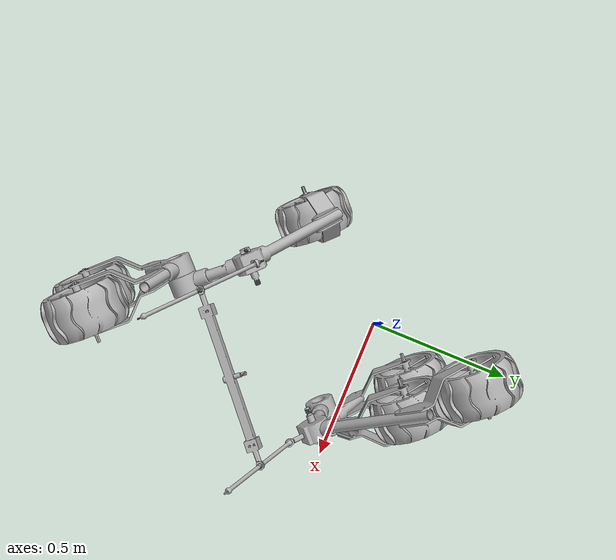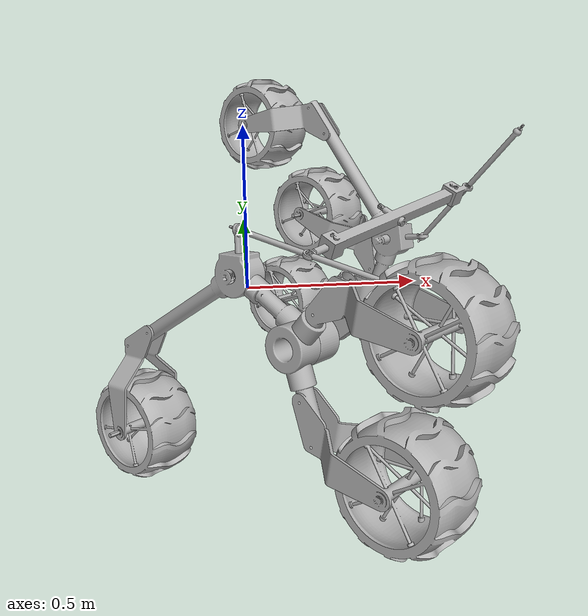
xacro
<?xml version="1.0"?>
<robot xmlns:xacro="http://www.ros.org/wiki/xacro"  name="robot">
<xacro:include filename="materials.xacro" />
<xacro:include filename="trans.xacro" />
<xacro:include filename="gazebo_control.xacro" />
<link name="base_link">
  <inertial>
    <origin xyz="0.0 0.0 0.0" rpy="0 0 0"/>
    <mass value="0.01"/>
    <inertia ixx="0.1" iyy="0.1" izz="0.1" ixy="0" iyz="0" ixz="0"/>
  </inertial>
  <visual>
    <origin xyz="0 0 0" rpy="0 0 0"/>
    <geometry>
      <mesh filename="package://my_bot/meshes/base_link.stl" scale="0.001 0.001 0.001"/>
    </geometry>
    <material name="silver"/>
  </visual>
  <collision>
    <origin xyz="0 0 0" rpy="0 0 0"/>
    <geometry>
      <mesh filename="package://my_bot/meshes/base_link.stl" scale="0.001 0.001 0.001"/>
    </geometry>
  </collision>
</link>

<link name="Bogie2_1">
  <inertial>
    <origin xyz="0.06251976698493288 -0.11015246561255954 0.004955724047181781" rpy="0 0 0"/>
    <mass value="10.182002771454556"/>
    <inertia ixx="0.236046" iyy="0.232383" izz="0.171857" ixy="0.060255" iyz="-0.017547" ixz="-0.018201"/>
  </inertial>
  <visual>
    <origin xyz="-0.101262 0.67433 -0.228037" rpy="0 0 0"/>
    <geometry>
      <mesh filename="package://my_bot/meshes/Bogie2_1.stl" scale="0.001 0.001 0.001"/>
    </geometry>
    <material name="silver"/>
  </visual>
  <collision>
    <origin xyz="-0.101262 0.67433 -0.228037" rpy="0 0 0"/>
    <geometry>
      <mesh filename="package://my_bot/meshes/Bogie2_1.stl" scale="0.001 0.001 0.001"/>
    </geometry>
  </collision>
</link>

<link name="Diff1_1">
  <inertial>
    <origin xyz="0.008076545764013954 -0.009489204709679455 -0.003466898798053508" rpy="0 0 0"/>
    <mass value="1.4810144679840673"/>
    <inertia ixx="0.027522" iyy="0.036276" izz="0.063269" ixy="-0.031063" iyz="0.0011" ixz="0.001287"/>
  </inertial>
  <visual>
    <origin xyz="-0.342141 0.375854 -0.3869" rpy="0 0 0"/>
    <geometry>
      <mesh filename="package://my_bot/meshes/Diff1_1.stl" scale="0.001 0.001 0.001"/>
    </geometry>
    <material name="silver"/>
  </visual>
  <collision>
    <origin xyz="-0.342141 0.375854 -0.3869" rpy="0 0 0"/>
    <geometry>
      <mesh filename="package://my_bot/meshes/Diff1_1.stl" scale="0.001 0.001 0.001"/>
    </geometry>
  </collision>
</link>

<link name="Bar1_1">
  <inertial>
    <origin xyz="0.045351822773323336 -0.032846199265664 0.0840140470710965" rpy="0 0 0"/>
    <mass value="0.28218703834108916"/>
    <inertia ixx="0.001138" iyy="0.001274" izz="0.000443" ixy="0.000207" iyz="0.000383" ixz="-0.000529"/>
  </inertial>
  <visual>
    <origin xyz="-0.488102 0.122014 -0.207048" rpy="0 0 0"/>
    <geometry>
      <mesh filename="package://my_bot/meshes/Bar1_1.stl" scale="0.001 0.001 0.001"/>
    </geometry>
    <material name="silver"/>
  </visual>
  <collision>
    <origin xyz="-0.488102 0.122014 -0.207048" rpy="0 0 0"/>
    <geometry>
      <mesh filename="package://my_bot/meshes/Bar1_1.stl" scale="0.001 0.001 0.001"/>
    </geometry>
  </collision>
</link>

<link name="Bar1_2">
  <inertial>
    <origin xyz="-0.0453511772266767 0.03284580073433602 -0.08401395292890351" rpy="0 0 0"/>
    <mass value="0.28218703834108916"/>
    <inertia ixx="0.001138" iyy="0.001274" izz="0.000443" ixy="0.000207" iyz="0.000383" ixz="-0.000529"/>
  </inertial>
  <visual>
    <origin xyz="-0.578805 0.187706 -0.375076" rpy="0 0 0"/>
    <geometry>
      <mesh filename="package://my_bot/meshes/Bar1_1.stl" scale="0.001 0.001 0.001"/>
    </geometry>
    <material name="silver"/>
  </visual>
  <collision>
    <origin xyz="-0.578805 0.187706 -0.375076" rpy="0 0 0"/>
    <geometry>
      <mesh filename="package://my_bot/meshes/Bar1_1.stl" scale="0.001 0.001 0.001"/>
    </geometry>
  </collision>
</link>

<link name="Bar2_1">
  <inertial>
    <origin xyz="0.07413351250862066 -0.06852176424171452 -0.001718250267395638" rpy="0 0 0"/>
    <mass value="0.28218703834108916"/>
    <inertia ixx="0.00066" iyy="0.000771" izz="0.001423" ixy="0.000705" iyz="-1.6e-05" ixz="1.8e-05"/>
  </inertial>
  <visual>
    <origin xyz="0.025606 0.447036 -0.394807" rpy="0 0 0"/>
    <geometry>
      <mesh filename="package://my_bot/meshes/Bar2_1.stl" scale="0.001 0.001 0.001"/>
    </geometry>
    <material name="silver"/>
  </visual>
  <collision>
    <origin xyz="0.025606 0.447036 -0.394807" rpy="0 0 0"/>
    <geometry>
      <mesh filename="package://my_bot/meshes/Bar2_1.stl" scale="0.001 0.001 0.001"/>
    </geometry>
  </collision>
</link>

<link name="Bar2_2">
  <inertial>
    <origin xyz="-0.07413348749137935 0.0685212357582855 0.0017187497326043855" rpy="0 0 0"/>
    <mass value="0.28218703834108916"/>
    <inertia ixx="0.00066" iyy="0.000771" izz="0.001423" ixy="0.000705" iyz="-1.6e-05" ixz="1.8e-05"/>
  </inertial>
  <visual>
    <origin xyz="-0.122661 0.584079 -0.39137" rpy="0 0 0"/>
    <geometry>
      <mesh filename="package://my_bot/meshes/Bar2_1.stl" scale="0.001 0.001 0.001"/>
    </geometry>
    <material name="silver"/>
  </visual>
  <collision>
    <origin xyz="-0.122661 0.584079 -0.39137" rpy="0 0 0"/>
    <geometry>
      <mesh filename="package://my_bot/meshes/Bar2_1.stl" scale="0.001 0.001 0.001"/>
    </geometry>
  </collision>
</link>

<link name="Wheel1_1">
  <inertial>
    <origin xyz="-1.2620295099519119e-06 5.90468842376346e-07 -5.043205407728735e-07" rpy="0 0 0"/>
    <mass value="18.64386375159242"/>
    <inertia ixx="0.207999" iyy="0.203936" izz="0.164115" ixy="0.045369" iyz="-0.012432" ixz="-0.013001"/>
  </inertial>
  <visual>
    <origin xyz="-0.069209 -0.367744 -0.38741" rpy="0 0 0"/>
    <geometry>
      <mesh filename="package://my_bot/meshes/Wheel1_1.stl" scale="0.001 0.001 0.001"/>
    </geometry>
    <material name="silver"/>
  </visual>
  <collision>
    <origin xyz="-0.069209 -0.367744 -0.38741" rpy="0 0 0"/>
    <geometry>
      <mesh filename="package://my_bot/meshes/Wheel1_1.stl" scale="0.001 0.001 0.001"/>
    </geometry>
  </collision>
</link>

<link name="Wheel2_1">
  <inertial>
    <origin xyz="-1.1942632050232493e-06 1.057572250023897e-06 1.3665486564562457e-07" rpy="0 0 0"/>
    <mass value="18.64386375159242"/>
    <inertia ixx="0.207999" iyy="0.203936" izz="0.164115" ixy="0.045369" iyz="-0.012432" ixz="-0.013001"/>
  </inertial>
  <visual>
    <origin xyz="-0.230521 -0.22289 -0.14374" rpy="0 0 0"/>
    <geometry>
      <mesh filename="package://my_bot/meshes/Wheel2_1.stl" scale="0.001 0.001 0.001"/>
    </geometry>
    <material name="silver"/>
  </visual>
  <collision>
    <origin xyz="-0.230521 -0.22289 -0.14374" rpy="0 0 0"/>
    <geometry>
      <mesh filename="package://my_bot/meshes/Wheel2_1.stl" scale="0.001 0.001 0.001"/>
    </geometry>
  </collision>
</link>

<link name="Wheel3_1">
  <inertial>
    <origin xyz="-9.592869747443444e-07 3.765590063653512e-07 -1.586157946931177e-07" rpy="0 0 0"/>
    <mass value="18.64386375159242"/>
    <inertia ixx="0.207999" iyy="0.203936" izz="0.164115" ixy="0.045369" iyz="-0.012432" ixz="-0.013001"/>
  </inertial>
  <visual>
    <origin xyz="-0.143367 -0.225919 0.163611" rpy="0 0 0"/>
    <geometry>
      <mesh filename="package://my_bot/meshes/Wheel3_1.stl" scale="0.001 0.001 0.001"/>
    </geometry>
    <material name="silver"/>
  </visual>
  <collision>
    <origin xyz="-0.143367 -0.225919 0.163611" rpy="0 0 0"/>
    <geometry>
      <mesh filename="package://my_bot/meshes/Wheel3_1.stl" scale="0.001 0.001 0.001"/>
    </geometry>
  </collision>
</link>

<link name="Wheel4_1">
  <inertial>
    <origin xyz="-3.1802624100851773e-07 -9.095444159501476e-07 -1.648780843410691e-06" rpy="0 0 0"/>
    <mass value="18.64386375159242"/>
    <inertia ixx="0.207997" iyy="0.203937" izz="0.164114" ixy="0.04537" iyz="-0.012432" ixz="-0.013"/>
  </inertial>
  <visual>
    <origin xyz="0.291017 0.34301 0.210668" rpy="0 0 0"/>
    <geometry>
      <mesh filename="package://my_bot/meshes/Wheel4_1.stl" scale="0.001 0.001 0.001"/>
    </geometry>
    <material name="silver"/>
  </visual>
  <collision>
    <origin xyz="0.291017 0.34301 0.210668" rpy="0 0 0"/>
    <geometry>
      <mesh filename="package://my_bot/meshes/Wheel4_1.stl" scale="0.001 0.001 0.001"/>
    </geometry>
  </collision>
</link>

<link name="Wheel5_1">
  <inertial>
    <origin xyz="8.405258897781209e-07 -8.250783583019228e-07 9.857058880374803e-07" rpy="0 0 0"/>
    <mass value="18.64386375159242"/>
    <inertia ixx="0.207995" iyy="0.203939" izz="0.164115" ixy="0.045369" iyz="-0.012433" ixz="-0.013001"/>
  </inertial>
  <visual>
    <origin xyz="-0.275576 0.947443 -0.074581" rpy="0 0 0"/>
    <geometry>
      <mesh filename="package://my_bot/meshes/Wheel5_1.stl" scale="0.001 0.001 0.001"/>
    </geometry>
    <material name="silver"/>
  </visual>
  <collision>
    <origin xyz="-0.275576 0.947443 -0.074581" rpy="0 0 0"/>
    <geometry>
      <mesh filename="package://my_bot/meshes/Wheel5_1.stl" scale="0.001 0.001 0.001"/>
    </geometry>
  </collision>
</link>

<link name="Wheel6_1">
  <inertial>
    <origin xyz="9.825421898868036e-07 -1.2094271084617247e-06 8.086583115352042e-07" rpy="0 0 0"/>
    <mass value="18.64386375159242"/>
    <inertia ixx="0.207995" iyy="0.203939" izz="0.164115" ixy="0.045369" iyz="-0.012433" ixz="-0.013001"/>
  </inertial>
  <visual>
    <origin xyz="-0.322519 0.906694 -0.387959" rpy="0 0 0"/>
    <geometry>
      <mesh filename="package://my_bot/meshes/Wheel6_1.stl" scale="0.001 0.001 0.001"/>
    </geometry>
    <material name="silver"/>
  </visual>
  <collision>
    <origin xyz="-0.322519 0.906694 -0.387959" rpy="0 0 0"/>
    <geometry>
      <mesh filename="package://my_bot/meshes/Wheel6_1.stl" scale="0.001 0.001 0.001"/>
    </geometry>
  </collision>
</link>

<link name="Bogie4_1">
  <inertial>
    <origin xyz="-0.0576795241193887 0.11151332283089457 0.01745672477431024" rpy="0 0 0"/>
    <mass value="10.182002771454542"/>
    <inertia ixx="0.235718" iyy="0.232513" izz="0.172056" ixy="0.060436" iyz="-0.01649" ixz="-0.018934"/>
  </inertial>
  <visual>
    <origin xyz="-0.372144 0.031872 0.064979" rpy="0 0 0"/>
    <geometry>
      <mesh filename="package://my_bot/meshes/Bogie4_1.stl" scale="0.001 0.001 0.001"/>
    </geometry>
    <material name="silver"/>
  </visual>
  <collision>
    <origin xyz="-0.372144 0.031872 0.064979" rpy="0 0 0"/>
    <geometry>
      <mesh filename="package://my_bot/meshes/Bogie4_1.stl" scale="0.001 0.001 0.001"/>
    </geometry>
  </collision>
</link>

<link name="Bogie3_1">
  <inertial>
    <origin xyz="-0.24598384655946126 0.3733777171361519 0.23572313584798862" rpy="0 0 0"/>
    <mass value="2.7421522792750093"/>
    <inertia ixx="0.017885" iyy="0.018532" izz="0.031298" ixy="0.00644" iyz="0.004516" ixz="-0.002275"/>
  </inertial>
  <visual>
    <origin xyz="-0.392766 0.076779 -0.180422" rpy="0 0 0"/>
    <geometry>
      <mesh filename="package://my_bot/meshes/Bogie3_1.stl" scale="0.001 0.001 0.001"/>
    </geometry>
    <material name="silver"/>
  </visual>
  <collision>
    <origin xyz="-0.392766 0.076779 -0.180422" rpy="0 0 0"/>
    <geometry>
      <mesh filename="package://my_bot/meshes/Bogie3_1.stl" scale="0.001 0.001 0.001"/>
    </geometry>
  </collision>
</link>

<link name="Bogie1_1">
  <inertial>
    <origin xyz="-0.28590244337464565 0.13764159401794218 -0.3934445335062897" rpy="0 0 0"/>
    <mass value="2.7421522792728923"/>
    <inertia ixx="0.028398" iyy="0.027753" izz="0.011564" ixy="-0.004417" iyz="-0.003682" ixz="-0.000457"/>
  </inertial>
  <visual>
    <origin xyz="0.002504 0.454759 -0.288737" rpy="0 0 0"/>
    <geometry>
      <mesh filename="package://my_bot/meshes/Bogie1_1.stl" scale="0.001 0.001 0.001"/>
    </geometry>
    <material name="silver"/>
  </visual>
  <collision>
    <origin xyz="0.002504 0.454759 -0.288737" rpy="0 0 0"/>
    <geometry>
      <mesh filename="package://my_bot/meshes/Bogie1_1.stl" scale="0.001 0.001 0.001"/>
    </geometry>
  </collision>
</link>

<joint name="Revolute 4" type="continuous">
  <origin xyz="0.103766 -0.219571 -0.0607" rpy="0 0 0"/>
  <parent link="Bogie1_1"/>
  <child link="Bogie2_1"/>
  <axis xyz="-0.708966 -0.677955 0.194277"/>
</joint>

<joint name="Revolute 5" type="continuous">
  <origin xyz="0.342141 -0.375854 0.3869" rpy="0 0 0"/>
  <parent link="base_link"/>
  <child link="Diff1_1"/>
  <axis xyz="0.626432 -0.731916 -0.268109"/>
</joint>

<joint name="Revolute 6" type="continuous">
  <origin xyz="0.186039 -0.110927 0.194654" rpy="0 0 0"/>
  <parent link="Bogie3_1"/>
  <child link="Bar1_2"/>
  <axis xyz="0.699606 -0.64133 0.315035"/>
</joint>
<!-- one of these two may need to swicth-->
<joint name="Revolute 7" type="continuous">
  <origin xyz="0.236664 0.188148 -0.011824" rpy="0 0 0"/>
  <parent link="Diff1_1"/>
  <child link="Bar1_1"/>
  <axis xyz="0.626432 -0.731916 -0.268109"/>
</joint>

<joint name="Revolute 8" type="continuous">
  <origin xyz="0.125165 -0.12932 0.102633" rpy="0 0 0"/>
  <parent link="Bogie1_1"/>
  <child link="Bar2_2"/>
  <axis xyz="0.005692 -0.280968 -0.9597"/>
</joint>
<!-- one of these two may need to swicth-->
<joint name="Revolute 9" type="continuous">
  <origin xyz="-0.21948 -0.208225 0.00447" rpy="0 0 0"/>
  <parent link="Diff1_1"/>
  <child link="Bar2_1"/>
  <axis xyz="0.626432 -0.731916 -0.268109"/>
</joint>

<joint name="Revolute 10" type="continuous">
  <origin xyz="-0.323557 0.444523 0.206988" rpy="0 0 0"/>
  <parent link="Bogie3_1"/>
  <child link="Wheel1_1"/>
  <axis xyz="-0.708966 -0.677955 0.194277"/>
</joint>

<joint name="Revolute 11" type="continuous">
  <origin xyz="-0.141623 0.254762 0.208719" rpy="0 0 0"/>
  <parent link="Bogie4_1"/>
  <child link="Wheel2_1"/>
  <axis xyz="0.708966 0.677955 -0.194277"/>
</joint>

<joint name="Revolute 12" type="continuous">
  <origin xyz="-0.228777 0.257791 -0.098632" rpy="0 0 0"/>
  <parent link="Bogie4_1"/>
  <child link="Wheel3_1"/>
  <axis xyz="0.708966 0.677955 -0.194277"/>
</joint>

<joint name="Revolute 13" type="continuous">
  <origin xyz="-0.288513 0.111749 -0.499405" rpy="0 0 0"/>
  <parent link="Bogie1_1"/>
  <child link="Wheel4_1"/>
  <axis xyz="-0.708966 -0.677955 0.194277"/>
</joint>

<joint name="Revolute 14" type="continuous">
  <origin xyz="0.174314 -0.273113 -0.153456" rpy="0 0 0"/>
  <parent link="Bogie2_1"/>
  <child link="Wheel5_1"/>
  <axis xyz="0.708966 0.677955 -0.194277"/>
</joint>

<joint name="Revolute 15" type="continuous">
  <origin xyz="0.221257 -0.232364 0.159922" rpy="0 0 0"/>
  <parent link="Bogie2_1"/>
  <child link="Wheel6_1"/>
  <axis xyz="0.708966 0.677955 -0.194277"/>
</joint>

<joint name="Revolute 1" type="continuous">
  <origin xyz="-0.020622 0.044907 -0.245401" rpy="0 0 0"/>
  <parent link="Bogie3_1"/>
  <child link="Bogie4_1"/>
  <axis xyz="0.708966 0.677955 -0.194277"/>
</joint>

<joint name="Revolute 17" type="continuous">
  <origin xyz="0.392766 -0.076779 0.180422" rpy="0 0 0"/>
  <parent link="base_link"/>
  <child link="Bogie3_1"/>
  <axis xyz="0.708966 0.677955 -0.194277"/>
</joint>

<joint name="Revolute 18" type="continuous">
  <origin xyz="-0.002504 -0.454759 0.288737" rpy="0 0 0"/>
  <parent link="base_link"/>
  <child link="Bogie1_1"/>
  <axis xyz="0.708966 0.677955 -0.194277"/>
</joint>

</robot>

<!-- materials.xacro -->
<robot name="URDF" xmlns:xacro="http://www.ros.org/wiki/xacro" >

<material name="silver">
  <color rgba="0.700 0.700 0.700 1.000"/>
</material>

</robot>

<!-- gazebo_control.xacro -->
<robot name="URDF" xmlns:xacro="http://www.ros.org/wiki/xacro" >

<xacro:property name="body_color" value="Gazebo/Silver" />

<gazebo>
  <plugin name="ignition::gazebo::systems::DiffDrive" filename="libignition-gazebo6-diff-drive-system.so"/>
</gazebo>
<gazebo reference="base_link">
  <material>${body_color}</material>
  <mu1>0.2</mu1>
  <mu2>0.2</mu2>
  <selfCollide>true</selfCollide>
  <gravity>true</gravity>
</gazebo>

<gazebo reference="Bogie2_1">
  <material>${body_color}</material>
  <mu1>0.2</mu1>
  <mu2>0.2</mu2>
  <selfCollide>true</selfCollide>
</gazebo>

<gazebo reference="Diff1_1">
  <material>${body_color}</material>
  <mu1>0.2</mu1>
  <mu2>0.2</mu2>
  <selfCollide>true</selfCollide>
</gazebo>

<gazebo reference="Bar1_1">
  <material>${body_color}</material>
  <mu1>0.2</mu1>
  <mu2>0.2</mu2>
  <selfCollide>true</selfCollide>
</gazebo>

<gazebo reference="Bar1_1">
  <material>${body_color}</material>
  <mu1>0.2</mu1>
  <mu2>0.2</mu2>
  <selfCollide>true</selfCollide>
</gazebo>

<gazebo reference="Bar2_1">
  <material>${body_color}</material>
  <mu1>0.2</mu1>
  <mu2>0.2</mu2>
  <selfCollide>true</selfCollide>
</gazebo>

<gazebo reference="Bar2_1">
  <material>${body_color}</material>
  <mu1>0.2</mu1>
  <mu2>0.2</mu2>
  <selfCollide>true</selfCollide>
</gazebo>

<gazebo reference="Wheel1_1">
  <material>${body_color}</material>
  <mu1>0.2</mu1>
  <mu2>0.2</mu2>
  <selfCollide>true</selfCollide>
</gazebo>

<gazebo reference="Wheel2_1">
  <material>${body_color}</material>
  <mu1>0.2</mu1>
  <mu2>0.2</mu2>
  <selfCollide>true</selfCollide>
</gazebo>

<gazebo reference="Wheel3_1">
  <material>${body_color}</material>
  <mu1>0.2</mu1>
  <mu2>0.2</mu2>
  <selfCollide>true</selfCollide>
</gazebo>

<gazebo reference="Wheel4_1">
  <material>${body_color}</material>
  <mu1>0.2</mu1>
  <mu2>0.2</mu2>
  <selfCollide>true</selfCollide>
</gazebo>

<gazebo reference="Wheel5_1">
  <material>${body_color}</material>
  <mu1>0.2</mu1>
  <mu2>0.2</mu2>
  <selfCollide>true</selfCollide>
</gazebo>

<gazebo reference="Wheel6_1">
  <material>${body_color}</material>
  <mu1>0.2</mu1>
  <mu2>0.2</mu2>
  <selfCollide>true</selfCollide>
</gazebo>

<gazebo reference="Bogie4_1">
  <material>${body_color}</material>
  <mu1>0.2</mu1>
  <mu2>0.2</mu2>
  <selfCollide>true</selfCollide>
</gazebo>

<gazebo reference="Bogie3_1">
  <material>${body_color}</material>
  <mu1>0.2</mu1>
  <mu2>0.2</mu2>
  <selfCollide>true</selfCollide>
</gazebo>

<gazebo reference="Bogie1_1">
  <material>${body_color}</material>
  <mu1>0.2</mu1>
  <mu2>0.2</mu2>
  <selfCollide>true</selfCollide>
</gazebo>

</robot>
